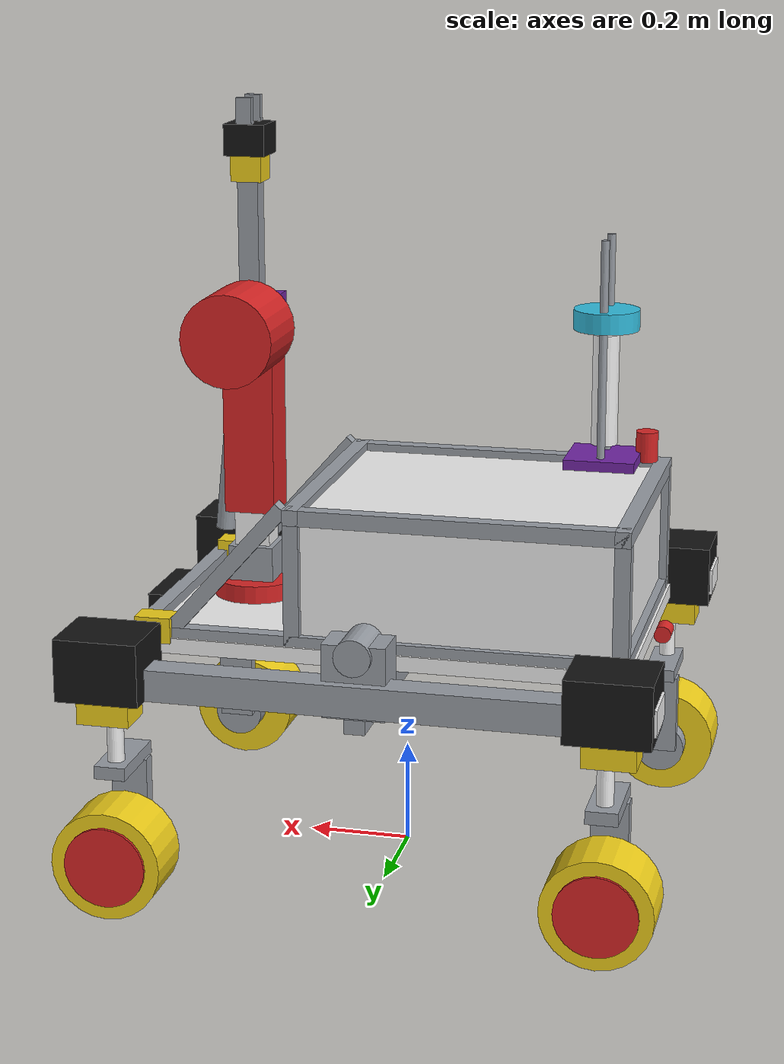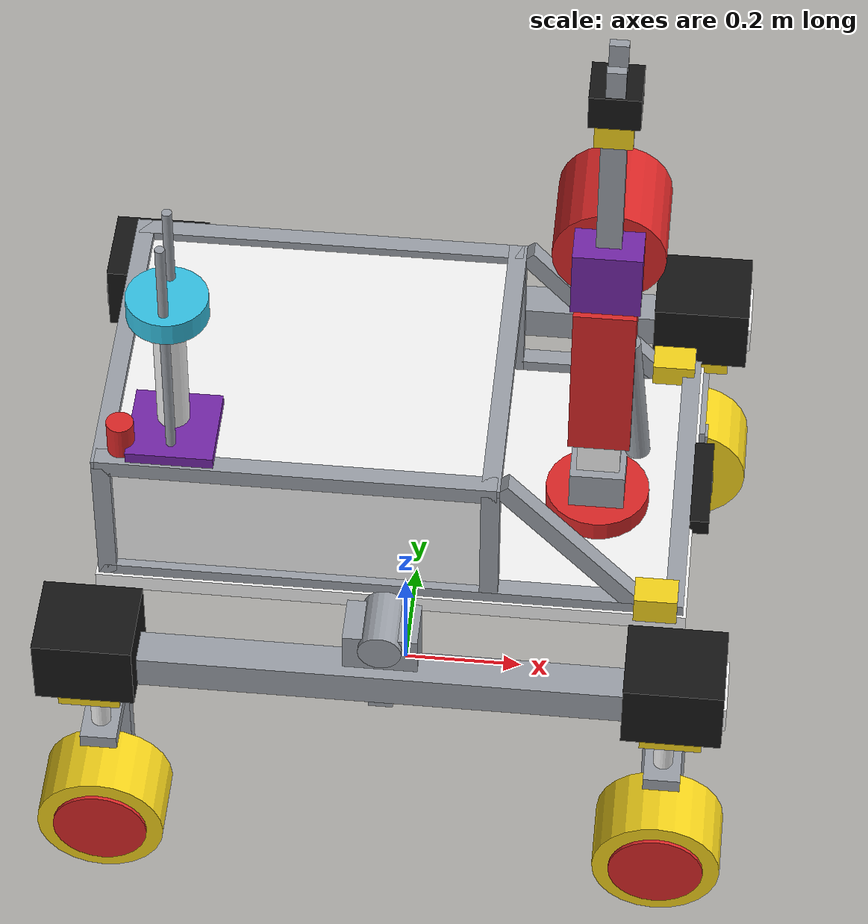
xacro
<?xml version="1.0"?>
<robot xmlns:xacro="http://www.ros.org/wiki/xacro" name="hubba">

    <!-- RVIZ ICIN RENK MATERYALLERI -->
    <material name="white"><color rgba="0.95 0.95 0.95 1.0"/></material>
    <material name="grey"><color rgba="0.60 0.62 0.65 1.0"/></material>
    <material name="yellow"><color rgba="0.95 0.82 0.10 1.0"/></material>
    <material name="vine_red"><color rgba="0.85 0.15 0.15 1.0"/></material>
    <material name="indigo"><color rgba="0.45 0.15 0.65 1.0"/></material>
    <material name="black"><color rgba="0.08 0.08 0.08 1.0"/></material>
    <material name="cyan_blue"><color rgba="0.20 0.75 0.88 1.0"/></material>

    <!-- GAZEBO VE RVIZ ICIN STABIL RENKLI PARCA MAKROSU -->
    <!-- Fixed joint'ler Gazebo tarafindan ana linke birlestirilir (preserveFixedJoint kullanilmaz) -->
    <xacro:macro name="colored_part" params="name parent xyz rpy geom_type size:='0 0 0' radius:=0 length:=0 rviz_mat gz_mat">
        <link name="${name}">
            <visual>
                <origin xyz="0 0 0" rpy="0 0 0"/>
                <geometry>
                    <xacro:if value="${geom_type == 'box'}">
                        <box size="${size}"/>
                    </xacro:if>
                    <xacro:if value="${geom_type == 'cylinder'}">
                        <cylinder radius="${radius}" length="${length}"/>
                    </xacro:if>
                </geometry>
                <material name="${rviz_mat}"/>
            </visual>
            <inertial>
                <mass value="0.05"/>
                <origin xyz="0 0 0" rpy="0 0 0"/>
                <inertia ixx="0.001" ixy="0" ixz="0" iyy="0.001" iyz="0" izz="0.001"/>
            </inertial>
        </link>
        <joint name="${parent}_to_${name}" type="fixed">
            <parent link="${parent}"/>
            <child link="${name}"/>
            <origin xyz="${xyz}" rpy="${rpy}"/>
        </joint>
        <gazebo reference="${name}">
            <material>${gz_mat}</material>
            <selfCollide>false</selfCollide>
        </gazebo>
    </xacro:macro>

    <link name="base_footprint"/>

    <joint name="base_footprint_to_base_link" type="fixed">
        <parent link="base_footprint"/>
        <child link="base_link"/>
        <origin xyz="0 0 0.0" rpy="0 0 ${-pi/2}"/>
    </joint>

    <!-- ANA GOVDE (Alt Sasi Platformu) -->
    <link name="base_link">
        <visual>
            <geometry><box size="0.56 0.96 0.03" /></geometry>
            <origin xyz="0 0 0.47" rpy="0 0 0" />
            <material name="white" />
        </visual>
        <collision>
            <geometry><box size="0.56 0.90 0.24" /></geometry>
            <origin xyz="0 -0.05 0.60" rpy="0 0 0" />
        </collision>
        <inertial>
            <mass value="50.0"/>
            <origin xyz="0 0 0.55" rpy="0 0 0"/>
            <inertia ixx="4.91" ixy="0" ixz="0" iyy="2.33" iyz="0" izz="6.40"/>
        </inertial>
    </link>
    <gazebo reference="base_link">
        <material>Gazebo/White</material>
        <selfCollide>false</selfCollide>
    </gazebo>

    <!-- ================= SASI, GRI DIS HATLAR VE EGIMLI DIKMELER ================= -->
    <xacro:colored_part name="rear_electronics_box" parent="base_link" xyz="0 -0.15 0.61" rpy="0 0 0" geom_type="box" size="0.52 0.62 0.25" rviz_mat="white" gz_mat="Gazebo/White"/>

    <!-- Govde Dis Hat Profilleri -->
    <xacro:colored_part name="frame_top_edge_r" parent="base_link" xyz="0.26 -0.15 0.735" rpy="0 0 0" geom_type="box" size="0.03 0.64 0.03" rviz_mat="grey" gz_mat="Gazebo/Grey"/>
    <xacro:colored_part name="frame_top_edge_l" parent="base_link" xyz="-0.26 -0.15 0.735" rpy="0 0 0" geom_type="box" size="0.03 0.64 0.03" rviz_mat="grey" gz_mat="Gazebo/Grey"/>
    <xacro:colored_part name="frame_top_front" parent="base_link" xyz="0 0.16 0.735" rpy="0 0 0" geom_type="box" size="0.55 0.03 0.03" rviz_mat="grey" gz_mat="Gazebo/Grey"/>
    <xacro:colored_part name="frame_top_rear" parent="base_link" xyz="0 -0.46 0.735" rpy="0 0 0" geom_type="box" size="0.55 0.03 0.03" rviz_mat="grey" gz_mat="Gazebo/Grey"/>
    <xacro:colored_part name="frame_pillar_fr" parent="base_link" xyz="0.26 0.16 0.61" rpy="0 0 0" geom_type="box" size="0.03 0.03 0.25" rviz_mat="grey" gz_mat="Gazebo/Grey"/>
    <xacro:colored_part name="frame_pillar_fl" parent="base_link" xyz="-0.26 0.16 0.61" rpy="0 0 0" geom_type="box" size="0.03 0.03 0.25" rviz_mat="grey" gz_mat="Gazebo/Grey"/>
    <xacro:colored_part name="frame_pillar_rr" parent="base_link" xyz="0.26 -0.46 0.61" rpy="0 0 0" geom_type="box" size="0.03 0.03 0.25" rviz_mat="grey" gz_mat="Gazebo/Grey"/>
    <xacro:colored_part name="frame_pillar_rl" parent="base_link" xyz="-0.26 -0.46 0.61" rpy="0 0 0" geom_type="box" size="0.03 0.03 0.25" rviz_mat="grey" gz_mat="Gazebo/Grey"/>

    <!-- Alt Dis Hatlar -->
    <xacro:colored_part name="bottom_side_rail_r" parent="base_link" xyz="0.26 0.0 0.49" rpy="0 0 0" geom_type="box" size="0.03 0.92 0.03" rviz_mat="grey" gz_mat="Gazebo/Grey"/>
    <xacro:colored_part name="bottom_side_rail_l" parent="base_link" xyz="-0.26 0.0 0.49" rpy="0 0 0" geom_type="box" size="0.03 0.92 0.03" rviz_mat="grey" gz_mat="Gazebo/Grey"/>
    <xacro:colored_part name="bottom_front_rail" parent="base_link" xyz="0 0.46 0.49" rpy="0 0 0" geom_type="box" size="0.55 0.03 0.03" rviz_mat="grey" gz_mat="Gazebo/Grey"/>
    <xacro:colored_part name="bottom_rear_rail" parent="base_link" xyz="0 -0.46 0.49" rpy="0 0 0" geom_type="box" size="0.55 0.03 0.03" rviz_mat="grey" gz_mat="Gazebo/Grey"/>

    <!-- Tam Birlesen Egimli Dikmeler -->
    <xacro:colored_part name="front_slanted_strut_r" parent="base_link" xyz="0.26 0.295 0.615" rpy="0.72 0 0" geom_type="box" size="0.03 0.03 0.36" rviz_mat="grey" gz_mat="Gazebo/Grey"/>
    <xacro:colored_part name="front_slanted_strut_l" parent="base_link" xyz="-0.26 0.295 0.615" rpy="0.72 0 0" geom_type="box" size="0.03 0.03 0.36" rviz_mat="grey" gz_mat="Gazebo/Grey"/>

    <!-- Sari On Kosebentler -->
    <xacro:colored_part name="front_yellow_bracket_r" parent="base_link" xyz="0.26 0.43 0.50" rpy="0 0 0" geom_type="box" size="0.05 0.07 0.05" rviz_mat="yellow" gz_mat="Gazebo/Yellow"/>
    <xacro:colored_part name="front_yellow_bracket_l" parent="base_link" xyz="-0.26 0.43 0.50" rpy="0 0 0" geom_type="box" size="0.05 0.07 0.05" rviz_mat="yellow" gz_mat="Gazebo/Yellow"/>
    <xacro:colored_part name="under_cyan_box" parent="base_link" xyz="0 0.10 0.43" rpy="0 0 0" geom_type="box" size="0.24 0.24 0.04" rviz_mat="cyan_blue" gz_mat="Gazebo/Turquoise"/>

    <!-- ================= 5 EKSENLI HAREKETLI ROBOTIK KOL ================= -->
    <!-- EKLEM 1 - Taban Donusu (Waist Yaw - Z Ekseni) -->
    <joint name="arm_base_joint" type="revolute">
        <parent link="base_link"/>
        <child link="arm_base_link"/>
        <origin xyz="0.04 0.32 0.485" rpy="0 0 0"/>
        <axis xyz="0 0 1"/>
        <limit lower="-3.14" upper="3.14" effort="100.0" velocity="1.5"/>
        <dynamics damping="5.0" friction="1.0"/>
    </joint>
    <gazebo reference="arm_base_joint">
        <implicitSpringDamper>true</implicitSpringDamper>
    </gazebo>

    <link name="arm_base_link">
        <visual>
            <geometry><cylinder radius="0.085" length="0.035"/></geometry>
            <origin xyz="0 0 0.0175" rpy="0 0 0"/>
            <material name="vine_red"/>
        </visual>
        <visual>
            <geometry><box size="0.09 0.09 0.07"/></geometry>
            <origin xyz="0 0 0.07" rpy="0 0 0"/>
            <material name="grey"/>
        </visual>
        <inertial>
            <mass value="1.5"/>
            <origin xyz="0 0 0.05" rpy="0 0 0"/>
            <inertia ixx="0.01" ixy="0" ixz="0" iyy="0.01" iyz="0" izz="0.01"/>
        </inertial>
    </link>
    <gazebo reference="arm_base_link">
        <material>Gazebo/Red</material>
        <selfCollide>false</selfCollide>
    </gazebo>

    <!-- EKLEM 2 - Omuz Hareketi (Shoulder Pitch - X Ekseni) -->
    <joint name="arm_shoulder_joint" type="revolute">
        <parent link="arm_base_link"/>
        <child link="arm_shoulder_link"/>
        <origin xyz="0 0 0.105" rpy="0 0 0"/>
        <axis xyz="1 0 0"/>
        <limit lower="-1.2" upper="1.57" effort="150.0" velocity="1.0"/>
        <dynamics damping="8.0" friction="2.0"/>
    </joint>
    <gazebo reference="arm_shoulder_joint">
        <implicitSpringDamper>true</implicitSpringDamper>
    </gazebo>

    <link name="arm_shoulder_link">
        <visual>
            <geometry><box size="0.06 0.07 0.44"/></geometry>
            <origin xyz="0 0 0.22" rpy="0 0 0"/>
            <material name="white"/>
        </visual>
        <visual>
            <geometry><box size="0.09 0.10 0.30"/></geometry>
            <origin xyz="0 0 0.22" rpy="0 0 0"/>
            <material name="vine_red"/>
        </visual>
        <visual>
            <geometry><cylinder radius="0.02" length="0.25"/></geometry>
            <origin xyz="0 0.05 0.15" rpy="0.1 0 0"/>
            <material name="grey"/>
        </visual>
        <inertial>
            <mass value="2.0"/>
            <origin xyz="0 0 0.22" rpy="0 0 0"/>
            <inertia ixx="0.04" ixy="0" ixz="0" iyy="0.04" iyz="0" izz="0.01"/>
        </inertial>
    </link>
    <gazebo reference="arm_shoulder_link">
        <material>Gazebo/Red</material>
        <selfCollide>false</selfCollide>
    </gazebo>

    <!-- EKLEM 3 - Dirsek Hareketi (Elbow Pitch - X Ekseni) -->
    <joint name="arm_elbow_joint" type="revolute">
        <parent link="arm_shoulder_link"/>
        <child link="arm_elbow_link"/>
        <origin xyz="0 0 0.44" rpy="0 0 0"/>
        <axis xyz="1 0 0"/>
        <limit lower="-2.2" upper="2.2" effort="100.0" velocity="1.2"/>
        <dynamics damping="6.0" friction="1.5"/>
    </joint>
    <gazebo reference="arm_elbow_joint">
        <implicitSpringDamper>true</implicitSpringDamper>
    </gazebo>

    <link name="arm_elbow_link">
        <visual>
            <geometry><cylinder radius="0.09" length="0.16"/></geometry>
            <origin xyz="-0.10 0 0" rpy="0 ${pi/2} 0"/>
            <material name="vine_red"/>
        </visual>
        <visual>
            <geometry><box size="0.09 0.11 0.12"/></geometry>
            <origin xyz="0 0 0" rpy="0 0 0"/>
            <material name="indigo"/>
        </visual>
        <visual>
            <geometry><box size="0.04 0.04 0.28"/></geometry>
            <origin xyz="0 0 0.14" rpy="0 0 0"/>
            <material name="grey"/>
        </visual>
        <inertial>
            <mass value="1.5"/>
            <origin xyz="0 0 0.10" rpy="0 0 0"/>
            <inertia ixx="0.02" ixy="0" ixz="0" iyy="0.02" iyz="0" izz="0.01"/>
        </inertial>
    </link>
    <gazebo reference="arm_elbow_link">
        <material>Gazebo/Purple</material>
        <selfCollide>false</selfCollide>
    </gazebo>

    <!-- EKLEM 4 - Bilek Egimi (Wrist Pitch - X Ekseni) -->
    <joint name="arm_wrist_pitch_joint" type="revolute">
        <parent link="arm_elbow_link"/>
        <child link="arm_wrist_link"/>
        <origin xyz="0 0 0.28" rpy="0 0 0"/>
        <axis xyz="1 0 0"/>
        <limit lower="-1.8" upper="1.8" effort="50.0" velocity="1.5"/>
        <dynamics damping="3.0" friction="0.5"/>
    </joint>
    <gazebo reference="arm_wrist_pitch_joint">
        <implicitSpringDamper>true</implicitSpringDamper>
    </gazebo>

    <link name="arm_wrist_link">
        <visual>
            <geometry><box size="0.06 0.06 0.05"/></geometry>
            <origin xyz="0 0 0.025" rpy="0 0 0"/>
            <material name="yellow"/>
        </visual>
        <inertial>
            <mass value="0.5"/>
            <origin xyz="0 0 0.025" rpy="0 0 0"/>
            <inertia ixx="0.002" ixy="0" ixz="0" iyy="0.002" iyz="0" izz="0.002"/>
        </inertial>
    </link>
    <gazebo reference="arm_wrist_link">
        <material>Gazebo/Yellow</material>
        <selfCollide>false</selfCollide>
    </gazebo>

    <!-- EKLEM 5 - Bilek Donusu (Wrist Roll - Z Ekseni) -->
    <joint name="arm_wrist_roll_joint" type="revolute">
        <parent link="arm_wrist_link"/>
        <child link="arm_end_effector_link"/>
        <origin xyz="0 0 0.05" rpy="0 0 0"/>
        <axis xyz="0 0 1"/>
        <limit lower="-3.14" upper="3.14" effort="30.0" velocity="2.0"/>
        <dynamics damping="2.0" friction="0.5"/>
    </joint>
    <gazebo reference="arm_wrist_roll_joint">
        <implicitSpringDamper>true</implicitSpringDamper>
    </gazebo>

    <link name="arm_end_effector_link">
        <visual>
            <geometry><box size="0.08 0.08 0.06"/></geometry>
            <origin xyz="0 0 0.03" rpy="0 0 0"/>
            <material name="black"/>
        </visual>
        <visual>
            <geometry><box size="0.015 0.03 0.06"/></geometry>
            <origin xyz="0.03 0 0.08" rpy="0 0 0"/>
            <material name="grey"/>
        </visual>
        <visual>
            <geometry><box size="0.015 0.03 0.06"/></geometry>
            <origin xyz="-0.03 0 0.08" rpy="0 0 0"/>
            <material name="grey"/>
        </visual>
        <inertial>
            <mass value="0.5"/>
            <origin xyz="0 0 0.04" rpy="0 0 0"/>
            <inertia ixx="0.002" ixy="0" ixz="0" iyy="0.002" iyz="0" izz="0.002"/>
        </inertial>
    </link>
    <gazebo reference="arm_end_effector_link">
        <material>Gazebo/Black</material>
        <selfCollide>false</selfCollide>
    </gazebo>

    <!-- ================= ARKA SONDAJ / BILIM KULESI ================= -->
    <xacro:colored_part name="drill_plate_purple" parent="base_link" xyz="0.20 -0.35 0.76" rpy="0 0 0" geom_type="box" size="0.14 0.14 0.02" rviz_mat="indigo" gz_mat="Gazebo/Purple"/>
    <xacro:colored_part name="drill_rod_1" parent="base_link" xyz="0.16 -0.35 0.98" rpy="0 0 0" geom_type="cylinder" radius="0.008" length="0.44" rviz_mat="grey" gz_mat="Gazebo/Grey"/>
    <xacro:colored_part name="drill_rod_2" parent="base_link" xyz="0.24 -0.35 0.98" rpy="0 0 0" geom_type="cylinder" radius="0.008" length="0.44" rviz_mat="grey" gz_mat="Gazebo/Grey"/>
    <xacro:colored_part name="drill_top_cyan" parent="base_link" xyz="0.20 -0.35 1.04" rpy="0 0 0" geom_type="cylinder" radius="0.065" length="0.04" rviz_mat="cyan_blue" gz_mat="Gazebo/Turquoise"/>
    <xacro:colored_part name="drill_motor_white" parent="base_link" xyz="0.20 -0.35 0.90" rpy="0 0 0" geom_type="cylinder" radius="0.026" length="0.22" rviz_mat="white" gz_mat="Gazebo/White"/>
    <xacro:colored_part name="estop_red" parent="base_link" xyz="0.24 -0.43 0.78" rpy="0 0 0" geom_type="cylinder" radius="0.022" length="0.06" rviz_mat="vine_red" gz_mat="Gazebo/Red"/>

    <!-- ================= DIFERANSIYEL BARI (fixed) ================= -->
    <link name="diff_bar">
        <visual>
            <geometry><box size="0.04 0.85 0.04" /></geometry>
            <origin xyz="0 0 0" rpy="0 0 0" />
            <material name="grey" />
        </visual>
        <inertial>
            <mass value="0.5"/>
            <inertia ixx="0.03" ixy="0" ixz="0" iyy="0.01" iyz="0" izz="0.03"/>
        </inertial>
    </link>
    <gazebo reference="diff_bar"><material>Gazebo/Grey</material></gazebo>

    <joint name="base_to_diff_bar" type="fixed">
        <parent link="base_link"/>
        <child link="diff_bar"/>
        <origin xyz="0 0 0.40" rpy="0 0 ${pi/2}"/>
    </joint>

    <!-- ================= TEKERLEK VE DIREKSIYON GRUBU MAKROSU ================= -->
    <xacro:macro name="wheel_assembly" params="prefix suffix parent_link reflect_x reflect_y">
        <link name="${prefix}_${suffix}_kutu">
            <visual>
                <geometry><box size="0.14 0.16 0.12" /></geometry>
                <material name="black" />
            </visual>
            <inertial>
                <mass value="0.5"/>
                <inertia ixx="0.005" ixy="0" ixz="0" iyy="0.005" iyz="0" izz="0.005"/>
            </inertial>
        </link>
        <gazebo reference="${prefix}_${suffix}_kutu"><material>Gazebo/Black</material></gazebo>

        <xacro:colored_part name="${prefix}_${suffix}_kutu_kapak" parent="${prefix}_${suffix}_kutu" xyz="0 ${0.082 * reflect_x} -0.015" rpy="0 0 0" geom_type="box" size="0.10 0.006 0.05" rviz_mat="white" gz_mat="Gazebo/White"/>

        <link name="${prefix}_${suffix}_gearbox">
            <visual>
                <geometry><box size="0.08 0.10 0.055" /></geometry>
                <material name="yellow" />
            </visual>
            <inertial>
                <mass value="0.5"/>
                <inertia ixx="0.005" ixy="0" ixz="0" iyy="0.005" iyz="0" izz="0.005"/>
            </inertial>
        </link>
        <gazebo reference="${prefix}_${suffix}_gearbox"><material>Gazebo/Yellow</material></gazebo>

        <link name="${prefix}_${suffix}_mil">
            <visual>
                <geometry><cylinder radius="0.016" length="0.10"/></geometry>
                <origin xyz="0 0 0" rpy="0 0 ${pi/2}" />
                <material name="white" />
            </visual>
            <inertial>
                <mass value="0.3"/>
                <inertia ixx="0.002" ixy="0" ixz="0" iyy="0.002" iyz="0" izz="0.002"/>
            </inertial>
        </link>
        <gazebo reference="${prefix}_${suffix}_mil"><material>Gazebo/White</material></gazebo>
        <xacro:colored_part name="${prefix}_${suffix}_konnektor" parent="${prefix}_${suffix}_mil" xyz="${-0.06 * reflect_y} 0 0.02" rpy="0 ${pi/2} 0" geom_type="cylinder" radius="0.018" length="0.05" rviz_mat="vine_red" gz_mat="Gazebo/Red"/>

        <link name="${prefix}_${suffix}_steering">
            <visual>
                <geometry><box size="0.15 0.06 0.025" /></geometry>
                <material name="grey" />
            </visual>
            <inertial>
                <mass value="0.3"/>
                <inertia ixx="0.002" ixy="0" ixz="0" iyy="0.002" iyz="0" izz="0.002"/>
            </inertial>
        </link>
        <gazebo reference="${prefix}_${suffix}_steering"><material>Gazebo/Grey</material></gazebo>

        <link name="${prefix}_${suffix}_drive_prf">
            <visual>
                <geometry><box size="0.03 0.07 0.16" /></geometry>
                <material name="grey" />
            </visual>
            <visual>
                <geometry><cylinder radius="0.05" length="0.09"/></geometry>
                <origin xyz="${0.045 * reflect_y} 0 -0.08" rpy="0 ${pi/2} 0" />
                <material name="grey" />
            </visual>
            <inertial>
                <mass value="0.5"/>
                <inertia ixx="0.005" ixy="0" ixz="0" iyy="0.005" iyz="0" izz="0.005"/>
            </inertial>
        </link>
        <gazebo reference="${prefix}_${suffix}_drive_prf"><material>Gazebo/Grey</material></gazebo>

        <!-- SARI TEKERLEK (zemin temas parametreleri) -->
        <link name="${prefix}_${suffix}_wheel">
            <visual>
                <geometry><cylinder radius="0.105" length="0.12"/></geometry>
                <origin xyz="0 0 0" rpy="0 ${pi/2} 0" />
                <material name="yellow" />
            </visual>
            <collision>
                <geometry><cylinder radius="0.105" length="0.12"/></geometry>
                <origin xyz="0 0 0" rpy="0 ${pi/2} 0" />
            </collision>
            <inertial>
                <mass value="3.0"/>
                <origin xyz="0 0 0" rpy="0 ${pi/2} 0"/>
                <inertia ixx="0.05" ixy="0" ixz="0" iyy="0.05" iyz="0" izz="0.05"/>
            </inertial>
        </link>
        <gazebo reference="${prefix}_${suffix}_wheel">
            <material>Gazebo/Yellow</material>
            <mu1>0.8</mu1>
            <mu2>0.5</mu2>
            <fdir1>0 1 0</fdir1>
            <kp>1000000.0</kp>
            <kd>100.0</kd>
            <minDepth>0.001</minDepth>
            <maxVel>0.1</maxVel>
        </gazebo>

        <!-- TEKERLEK ORTASI TAMAMEN KIRMIZI JANT KAPAGI -->
        <xacro:colored_part name="${prefix}_${suffix}_wheel_red_rim" parent="${prefix}_${suffix}_wheel" xyz="${0.058 * reflect_y} 0 0" rpy="0 ${pi/2} 0" geom_type="cylinder" radius="0.078" length="0.016" rviz_mat="vine_red" gz_mat="Gazebo/Red"/>

        <joint name="${parent_link}_to_${prefix}_${suffix}_kutu" type="fixed">
            <parent link="${parent_link}"/>
            <child link="${prefix}_${suffix}_kutu"/>
            <origin xyz="0 ${0.47 * reflect_x} 0.03" rpy="0 0 0"/>
        </joint>

        <joint name="${prefix}_${suffix}_kutu_to_gearbox" type="fixed">
            <parent link="${prefix}_${suffix}_kutu"/>
            <child link="${prefix}_${suffix}_gearbox"/>
            <origin xyz="0 0 -0.085" rpy="0 0 0"/>
        </joint>

        <joint name="${prefix}_${suffix}_gearbox_to_mil" type="fixed">
            <parent link="${prefix}_${suffix}_gearbox"/>
            <child link="${prefix}_${suffix}_mil"/>
            <origin xyz="0 ${-0.01 * reflect_x} -0.06" rpy="0 0 0"/>
        </joint>

        <joint name="${prefix}_${suffix}_mil_to_steering" type="fixed">
            <parent link="${prefix}_${suffix}_mil"/>
            <child link="${prefix}_${suffix}_steering"/>
            <origin xyz="${-0.035 * reflect_y} 0 -0.06" rpy="0 0 0"/>
        </joint>

        <joint name="${prefix}_${suffix}_steering_to_drive" type="fixed">
            <parent link="${prefix}_${suffix}_steering"/>
            <child link="${prefix}_${suffix}_drive_prf"/>
            <origin xyz="${-0.045 * reflect_y} 0 -0.09" rpy="0 0 0"/>
        </joint>

        <joint name="${prefix}_${suffix}_drive_to_wheel" type="continuous">
            <parent link="${prefix}_${suffix}_drive_prf"/>
            <child link="${prefix}_${suffix}_wheel"/>
            <axis xyz="1 0 0"/>
            <origin xyz="${0.10 * reflect_y} 0 -0.08" rpy="0 0 0"/>
            <dynamics damping="0.5" friction="0.1"/>
        </joint>
    </xacro:macro>

    <!-- ================= YAN ROCKER BACAKLARI MAKROSU (Stabil Suspansiyon) ================= -->
    <xacro:macro name="rover_leg" params="prefix reflect_y">
        <link name="${prefix}_legmil">
            <visual>
                <geometry><cylinder radius="0.035" length="0.10"/></geometry>
                <origin xyz="0 0 0" rpy="0 ${pi/2} 0" />
                <material name="grey" />
            </visual>
            <inertial>
                <mass value="1.0"/>
                <inertia ixx="0.01" ixy="0" ixz="0" iyy="0.01" iyz="0" izz="0.01"/>
            </inertial>
        </link>
        <gazebo reference="${prefix}_legmil"><material>Gazebo/Grey</material></gazebo>

        <link name="${prefix}_prfleg">
            <visual>
                <geometry><box size="0.08 0.12 0.14" /></geometry>
                <material name="grey" />
            </visual>
            <inertial>
                <mass value="1.0"/>
                <inertia ixx="0.01" ixy="0" ixz="0" iyy="0.01" iyz="0" izz="0.01"/>
            </inertial>
        </link>
        <gazebo reference="${prefix}_prfleg"><material>Gazebo/Grey</material></gazebo>

        <link name="${prefix}_bacak">
            <visual>
                <geometry><box size="0.06 0.88 0.06"/></geometry>
                <origin xyz="0 0 0" rpy="0 0 0" />
                <material name="grey" />
            </visual>
            <collision>
                <geometry><box size="0.06 0.80 0.06"/></geometry>
                <origin xyz="0 0 0" rpy="0 0 0" />
            </collision>
             <inertial>
                <mass value="3.0"/>
                <inertia ixx="0.1" ixy="0" ixz="0" iyy="0.1" iyz="0" izz="0.1"/>
            </inertial>
        </link>
        <gazebo reference="${prefix}_bacak"><material>Gazebo/Grey</material></gazebo>

        <!-- Bacak eklemi - Yuksek damping (25.0) ile salinim ve titreme kesildi -->
        <joint name="base_to_${prefix}_legmil" type="revolute">
            <parent link="base_link"/>
            <child link="${prefix}_legmil"/>
            <origin xyz="${0.39 * reflect_y} 0 0.53" rpy="0 0 0"/>
            <axis xyz="1 0 0"/>
            <limit lower="-0.20" upper="0.20" effort="1000" velocity="0.5"/>
            <dynamics damping="25.0" friction="2.0"/>
        </joint>

        <gazebo reference="base_to_${prefix}_legmil">
            <springStiffness>400.0</springStiffness>
            <springReference>0.0</springReference>
            <implicitSpringDamper>true</implicitSpringDamper>
        </gazebo>

        <joint name="${prefix}_legmil_to_prf" type="fixed">
            <parent link="${prefix}_legmil"/>
            <child link="${prefix}_prfleg"/>
            <origin xyz="0 0 -0.05" rpy="0 0 0"/>
        </joint>

        <joint name="${prefix}_prf_to_bacak" type="fixed">
            <parent link="${prefix}_prfleg"/>
            <child link="${prefix}_bacak"/>
            <origin xyz="${0.03 * reflect_y} 0 -0.03" rpy="0 0 0"/>
        </joint>
    </xacro:macro>

    <xacro:rover_leg prefix="sag" reflect_y="1" />
    <xacro:wheel_assembly prefix="sag" suffix="on" parent_link="sag_bacak" reflect_x="1" reflect_y="1" />
    <xacro:wheel_assembly prefix="sag" suffix="arka" parent_link="sag_bacak" reflect_x="-1" reflect_y="1" />

    <xacro:rover_leg prefix="sol" reflect_y="-1" />
    <xacro:wheel_assembly prefix="sol" suffix="on" parent_link="sol_bacak" reflect_x="1" reflect_y="-1" />
    <xacro:wheel_assembly prefix="sol" suffix="arka" parent_link="sol_bacak" reflect_x="-1" reflect_y="-1" />

    <!-- ZED2 KAMERA -->
    <link name="zed2_camera_center">
        <visual>
            <geometry><box size="0.033 0.175 0.03" /></geometry>
            <material name="black"/>
        </visual>
        <inertial>
            <mass value="0.16"/>
            <inertia ixx="0.001" ixy="0" ixz="0" iyy="0.001" iyz="0" izz="0.001"/>
        </inertial>
    </link>
    <gazebo reference="zed2_camera_center"><material>Gazebo/Black</material></gazebo>

    <joint name="base_to_zed2" type="fixed">
        <parent link="base_link"/>
        <child link="zed2_camera_center"/>
        <origin xyz="0 0.49 0.49" rpy="0 0 ${pi/2}"/>
    </joint>

    <link name="zed2_camera_optical_frame"/>
    <joint name="zed2_optical_joint" type="fixed">
        <parent link="zed2_camera_center"/>
        <child link="zed2_camera_optical_frame"/>
        <origin xyz="0 0 0" rpy="${-pi/2} 0 ${-pi/2}"/>
    </joint>

    <gazebo reference="zed2_camera_center">
        <sensor type="depth" name="zed2_sensor">
            <always_on>true</always_on>
            <update_rate>10.0</update_rate>
            <camera name="zed2">
                <horizontal_fov>1.91986</horizontal_fov>
                <image><width>640</width><height>360</height><format>R8G8B8</format></image>
                <clip><near>0.3</near><far>20.0</far></clip>
                <noise><type>gaussian</type><mean>0.0</mean><stddev>0.007</stddev></noise>
            </camera>
            <plugin name="zed2_camera_controller" filename="libgazebo_ros_camera.so">
                <ros>
                    <namespace>/zed2</namespace>
                    <remapping>image_raw:=image_raw</remapping>
                    <remapping>depth/image_raw:=depth/image_raw</remapping>
                    <remapping>camera_info:=camera_info</remapping>
                    <remapping>depth/camera_info:=depth/camera_info</remapping>
                    <remapping>points:=zed2_sensor/points</remapping>
                </ros>
                <frame_name>zed2_camera_optical_frame</frame_name>
                <hack_baseline>0.12</hack_baseline>
                <min_depth>0.3</min_depth>
                <max_depth>20.0</max_depth>
            </plugin>
        </sensor>
    </gazebo>

    <gazebo>
        <plugin name="gazebo_ros_p3d" filename="libgazebo_ros_p3d.so">
            <ros><remapping>odom:=odom</remapping></ros>
            <body_name>base_footprint</body_name>
            <frame_name>odom</frame_name>
            <update_rate>30.0</update_rate>
            <xyz_offset>0 0 0</xyz_offset>
            <rpy_offset>0 0 0</rpy_offset>
            <gaussian_noise>0.0</gaussian_noise>
            <publish_tf>false</publish_tf>
        </plugin>
    </gazebo>

    <!-- ================= ROS2 CONTROL (Tekerlekler + 5 Robot Kol Eklemi) ================= -->
    <ros2_control name="GazeboSystem" type="system">
        <hardware>
            <plugin>gazebo_ros2_control/GazeboSystem</plugin>
        </hardware>

        <!-- Suspansiyon Eklemleri -->
        <joint name="base_to_sag_legmil">
            <command_interface name="effort"/>
            <state_interface name="position"/>
            <state_interface name="velocity"/>
        </joint>
        <joint name="base_to_sol_legmil">
            <command_interface name="effort"/>
            <state_interface name="position"/>
            <state_interface name="velocity"/>
        </joint>

        <!-- Tekerlek Surus Eklemleri -->
        <joint name="sol_on_drive_to_wheel">
            <command_interface name="velocity"/>
            <state_interface name="velocity"/>
            <state_interface name="position"/>
        </joint>
        <joint name="sag_on_drive_to_wheel">
            <command_interface name="velocity"/>
            <state_interface name="velocity"/>
            <state_interface name="position"/>
        </joint>
        <joint name="sol_arka_drive_to_wheel">
            <command_interface name="velocity"/>
            <state_interface name="velocity"/>
            <state_interface name="position"/>
        </joint>
        <joint name="sag_arka_drive_to_wheel">
            <command_interface name="velocity"/>
            <state_interface name="velocity"/>
            <state_interface name="position"/>
        </joint>

        <!-- ROBOTIK KOL - 5 ADET HAREKETLI EKLEM ARAYUZU -->
        <joint name="arm_base_joint">
            <command_interface name="position"/>
            <state_interface name="position"/>
            <state_interface name="velocity"/>
        </joint>
        <joint name="arm_shoulder_joint">
            <command_interface name="position"/>
            <state_interface name="position"/>
            <state_interface name="velocity"/>
        </joint>
        <joint name="arm_elbow_joint">
            <command_interface name="position"/>
            <state_interface name="position"/>
            <state_interface name="velocity"/>
        </joint>
        <joint name="arm_wrist_pitch_joint">
            <command_interface name="position"/>
            <state_interface name="position"/>
            <state_interface name="velocity"/>
        </joint>
        <joint name="arm_wrist_roll_joint">
            <command_interface name="position"/>
            <state_interface name="position"/>
            <state_interface name="velocity"/>
        </joint>
    </ros2_control>

    <gazebo>
        <plugin filename="libgazebo_ros2_control.so" name="gazebo_ros2_control">
            <parameters>$(find robot_2_description)/config/control_arm.yaml</parameters>
        </plugin>
    </gazebo>

</robot>
